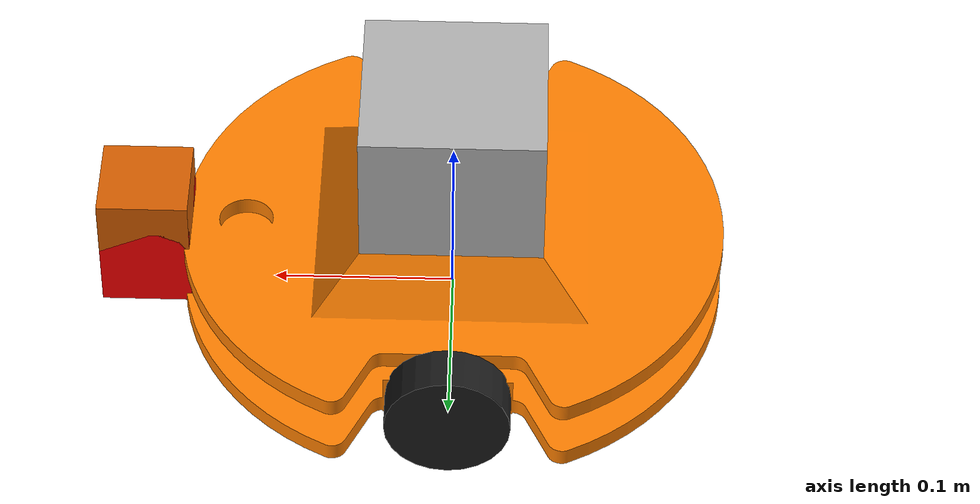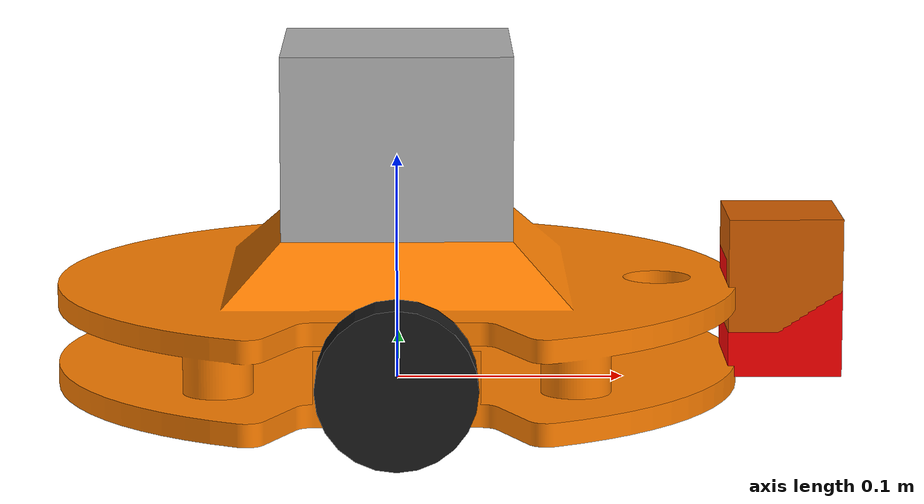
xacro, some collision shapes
<robot name="my_robot" xmlns:xacro="http://www.ros.org/wiki/xacro">
  <xacro:include filename="$(find my_robot)/urdf/my_robot.gazebo" />

  <gazebo reference="chassis">
    <material>Gazebo/Orange</material>
  </gazebo>

  <gazebo reference="right_wheel">
    <material>Gazebo/Black</material>
  </gazebo>

   <gazebo reference="left_wheel">
    <material>Gazebo/Black</material>
  </gazebo>

   <gazebo reference="camera">
    <material>Gazebo/Red</material>
  </gazebo>

  <link name="robot_footprint"></link>

  <joint name="robot_footprint_joint" type="fixed">
    <origin xyz="0 0 0" rpy="0 0 0" />
    <parent link="robot_footprint"/>
    <child link="chassis" />
  </joint>

  <!-- Use the STL files for the chassis -->
  <link name="chassis">
    <inertial>
      <mass value="15.0"/>
      <origin xyz="0.0 0 0" rpy="0 0 0"/>
      <inertia ixx="0.1" ixy="0" ixz="0" iyy="0.1" iyz="0" izz="0.1"/>
    </inertial>

    <collision name="chassis_collision">
      <origin xyz="0 0 0" rpy="0 0 0"/>
      <geometry>
        <mesh filename="package://my_robot/meshes/chasis.stl" scale="1 1 1"/>
      </geometry>
    </collision>

    <visual name="chassis_visual">
      <origin xyz="0 0 0" rpy="0 0 0"/>
      <geometry>
        <mesh filename="package://my_robot/meshes/chasis.stl" scale="1 1 1"/>
      </geometry>
      <material name="">
        <color rgba="1 0.5 0 1"/>
      </material>
    </visual>
  </link>

  <!-- Left Wheel Link -->
  <link name="left_wheel">
      <collision>
          <geometry>
              <cylinder radius="0.034" length="0.025"/>
          </geometry>
          <origin xyz="0 0 0" rpy="0 1.5707 1.5707"/>
      </collision>
      <inertial>
          <mass value="5"/>
          <inertia ixx="0.1" ixy="0" ixz="0" iyy="0.1" iyz="0" izz="0.1"/>
      </inertial>
      <visual>
          <geometry>
              <cylinder radius="0.034" length="0.025"/>
          </geometry>
          <origin xyz="0 0 0" rpy="0 1.5707 1.5707"/>
          <material name="">
            <color rgba="0.1 0.1 0.1 1"/>
          </material>
      </visual>
  </link>

  <!-- Right Wheel Link -->
  <link name="right_wheel">
      <collision>
          <geometry>
              <cylinder radius="0.034" length="0.025"/>
          </geometry>
          <origin xyz="0 0 0" rpy="0 1.5707 1.5707"/>
      </collision>
      <inertial>
          <mass value="5"/>
          <inertia ixx="0.1" ixy="0" ixz="0" iyy="0.1" iyz="0" izz="0.1"/>
      </inertial>
      <visual>
          <geometry>
              <cylinder radius="0.034" length="0.025"/>
          </geometry>
          <origin xyz="0 0 0" rpy="0 1.5707 1.5707"/>
          <material name="">
            <color rgba="0.1 0.1 0.1 1"/>
          </material>
      </visual>
  </link>

  <!-- Differential Drive Joints -->

  <!-- Left Wheel Joint -->
  <joint type="continuous" name="left_wheel_hinge">
      <origin xyz="0 0.12 0.0225" rpy="0 0 0"/>
      <child link="left_wheel"/>
      <parent link="chassis"/>
      <axis xyz="0 1 0" rpy="0 0 0"/>
      <limit effort="10000" velocity="1000"/>
      <dynamics damping="1.0" friction="1.0"/>
  </joint>

  <!-- Right Wheel Joint -->
  <joint type="continuous" name="right_wheel_hinge">
      <origin xyz="0 -0.12 0.0225" rpy="0 0 0"/>
      <child link="right_wheel"/>
      <parent link="chassis"/>
      <axis xyz="0 1 0" rpy="0 0 0"/>
      <limit effort="10000" velocity="1000"/>
      <dynamics damping="1.0" friction="1.0"/>
  </joint>

  <!-- Camera Link -->
  <link name="camera">
    <inertial>
      <mass value="0.1"/>
      <origin xyz="0.0 0 0" rpy="0 0 0"/>
      <inertia
          ixx="1e-6" ixy="0" ixz="0"
          iyy="1e-6" iyz="0"
          izz="1e-6"
      />
    </inertial>

    <collision name="camera_collision">
      <origin xyz="0 0 0" rpy="0 0 0"/>
      <geometry>
        <box size="0.05 0.05 0.05"/>
      </geometry>
    </collision>

    <visual name="camera_visual">
      <origin xyz="0 0 0" rpy="0 0 0"/>
      <geometry>
        <box size="0.05 0.05 0.05"/>
      </geometry>
      <material name="">
        <color rgba="1 0 0 1"/>
      </material>
    </visual>
  </link>

  <!-- Camera Joint -->
  <joint name="camera_joint" type="fixed">
    <origin xyz="0.17 0 0.03" rpy="0 0 0"/>
    <parent link="chassis"/>
    <child link="camera"/>
    <axis xyz="0 1 0"/>
  </joint>

  <link name="camera_link">
    <inertial>
      <mass value="0.1"/>
      <origin xyz="0.0 0 0" rpy="0 0 0"/>
      <inertia
          ixx="1e-6" ixy="0" ixz="0"
          iyy="1e-6" iyz="0"
          izz="1e-6"
      />
    </inertial>
    <collision>
      <origin xyz="0 0 0" rpy="0 0 0"/>
      <geometry>
        <box size="0.05 0.05 0.05"/>
      </geometry>
    </collision>
    <visual>
      <origin xyz="0 0 0" rpy="0 0 0"/>
      <geometry>
        <box size="0.05 0.05 0.05"/>
      </geometry>
    </visual>
  </link>

  <!-- Camera Link Joint -->
  <joint name="camera_link_joint" type="fixed">
    <origin xyz="0.17 0 0.05" rpy="0 0 0"/>
    <parent link="chassis"/>
    <child link="camera_link"/>
  </joint>

  <!-- Camera Optical Link and Joint -->
  <joint name="camera_optical_joint" type="fixed">
    <origin xyz="0 0 0" rpy="-1.5707 0 -1.5707"/>
    <parent link="camera_link"/>
    <child link="camera_link_optical"/>
  </joint>

  <link name="camera_link_optical">
  </link>

  <!-- Hokuyo Lidar Link -->
  <link name="hokuyo">
    <inertial>
      <mass value="1e-5"/>
      <origin xyz="0.0 0 0" rpy="0 0 0"/>
      <inertia
          ixx="1e-6" ixy="0" ixz="0"
          iyy="1e-6" iyz="0"
          izz="1e-6"
      />
    </inertial>

    <collision name="hokuyo_collision">
      <origin xyz="0 0 0" rpy="0 0 0"/>
      <geometry>
        <box size="0.1 0.1 0.1"/>
      </geometry>
    </collision>

    <visual name="hokuyo_visual">
      <origin xyz="0 0 0" rpy="0 0 0"/>
      <geometry>
        <mesh filename="package://my_robot/meshes/hokuyo.dae"/>
      </geometry>
    </visual>
  </link>

  <!-- Hokuyo Joint -->
  <joint name="hokuyo_joint" type="fixed">
    <origin xyz="0 0 0.1" rpy="0 0 0"/>
    <parent link="chassis"/>
    <child link="hokuyo"/>
    <axis xyz="0 1 0"/>
  </joint>

</robot>
